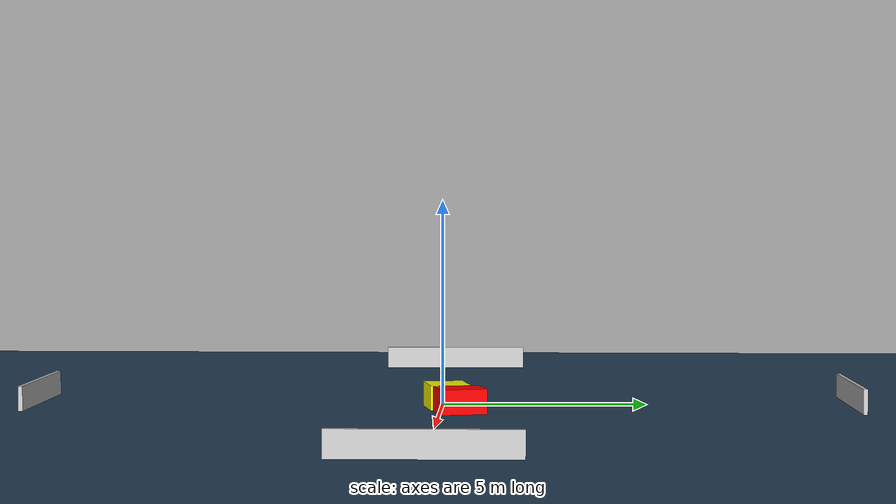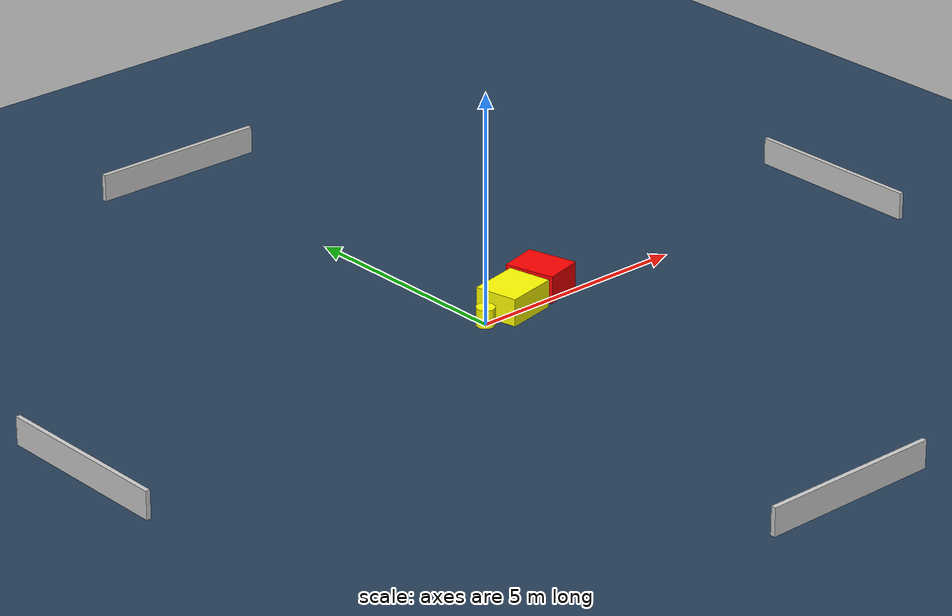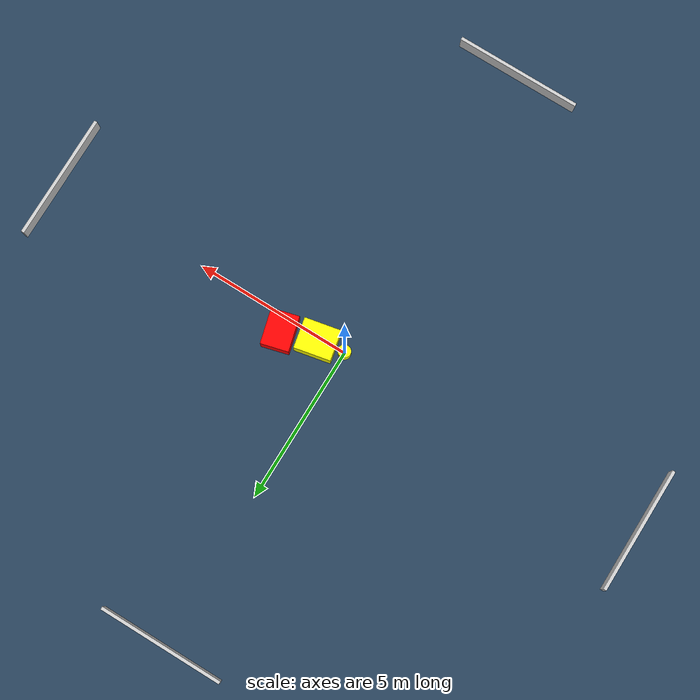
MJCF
<?xml version="1.0" ?>
<mujoco model="generated_environment">
  <option timestep="0.01" integrator="RK4" cone="elliptic"/>
  <default>
    <geom density="1"/>
  </default>
  <asset>
    <texture builtin="gradient" height="3072" name="skybox" rgb1="0.3 0.5 0.7" rgb2="0 0 0" type="skybox" width="512"/>
    <texture builtin="checker" height="300" name="groundplane" rgb1="0.2 0.3 0.4" rgb2="0.1 0.2 0.3" type="2d" width="300"/>
    <material name="groundplane" reflectance="0.2" texrepeat="5 5" texture="groundplane"/>
  </asset>
  <worldbody>
    <light dir="0 0 -1" directional="true" pos="0 0 1.5"/>
    <geom condim="3" friction="0.5 0.005 0.001" material="groundplane" name="floor" pos="0 0 0" size="0 0 0.05" type="plane"/>
    <body name="walls">
      <geom name="wall_1" condim="4" pos="-10.0 0.0 0.3" rgba="0.800000011920929 0.800000011920929 0.800000011920929 1.0" size="0.05 2.0 0.3" type="box"/>
      <geom name="wall_2" condim="4" pos="10.0 0.0 0.3" rgba="0.800000011920929 0.800000011920929 0.800000011920929 1.0" size="0.05 2.0 0.3" type="box"/>
      <geom name="wall_3" condim="4" pos="0.0 -10.0 0.3" rgba="0.800000011920929 0.800000011920929 0.800000011920929 1.0" size="2.0 0.05 0.3" type="box"/>
      <geom name="wall_4" condim="4" pos="0.0 10.0 0.3" rgba="0.800000011920929 0.800000011920929 0.800000011920929 1.0" size="2.0 0.05 0.3" type="box"/>
    </body>
    <body name="robot">
      <joint name="joint_x" type="slide" pos="0 0 0" axis="1 0 0"/>
      <joint name="joint_y" type="slide" pos="0 0 0" axis="0 1 0"/>
      <geom name="robot" type="cylinder" pos="0.0 0.0 0.2" size="0.2 0.2 0.0" mass="5.0" friction="1.0 0.005 0.0001" condim="4" rgba="1.0 1.0 0.0 1.0"/>
    </body>
    <body name="obstacle_1_movable">
      <geom name="obstacle_1_movable" condim="4" pos="0.8499931412838211 0.13261181044530107 0.3" euler="0 0 101.52794146074973" friction="0.0 0.005 0.001" rgba="1.0 1.0 0.0 1.0" size="0.4825146630158795 0.5783898457239753 0.3" type="box" mass="0.1"/>
      <joint type="free"/>
    </body>
    <body name="obstacle_2_static">
      <geom name="obstacle_2_static" condim="4" pos="1.9376422745728101 0.4827723833513085 0.3" euler="0 0 194.76842396729538" friction="0.0 0.005 0.001" rgba="1.0 0.0 0.0 1.0" size="0.43897553693268376 0.5566490665722916 0.3" type="box"/>
    </body>
  </worldbody>
  <actuator>
    <motor name="actuator_x" joint="joint_x" gear="1" ctrlrange="-1 1"/>
    <motor name="actuator_y" joint="joint_y" gear="1" ctrlrange="-1 1"/>
  </actuator>
</mujoco>
